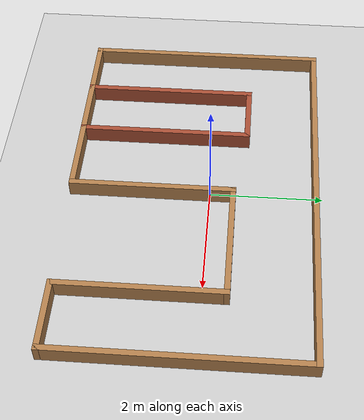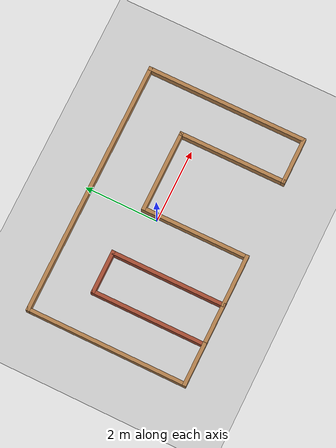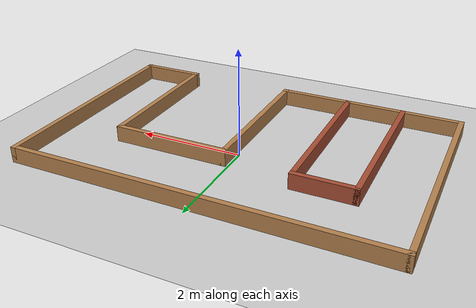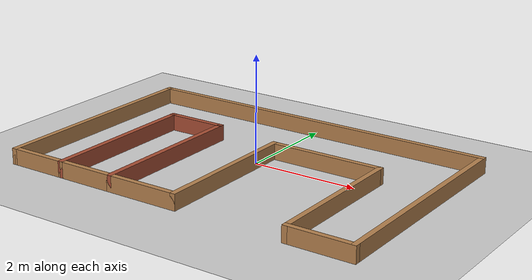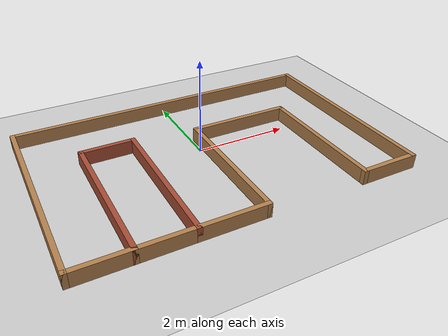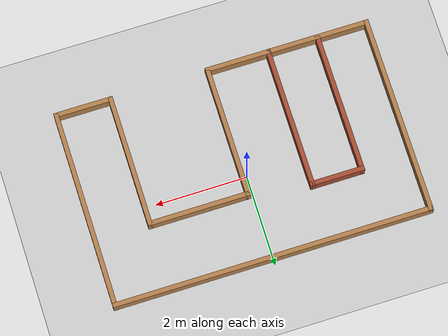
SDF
<sdf version='1.7'>
  <world name='default'>
    <!-- A global light source -->
    <include>
      <uri>model://sun</uri>
    </include>

    <!-- A ground plane -->
    <include>
      <uri>model://ground_plane</uri>
    </include>

    <physics type="ode">
      <real_time_update_rate>0.0</real_time_update_rate>
      <max_step_size>0.003</max_step_size>
      <ode>
        <solver>
          <type>quick</type>
          <iters>150</iters>
          <precon_iters>0</precon_iters>
          <sor>1.400000</sor>
          <use_dynamic_moi_rescaling>1</use_dynamic_moi_rescaling>
        </solver>
        <constraints>
          <cfm>0.00001</cfm>
          <erp>0.2</erp>
          <contact_max_correcting_vel>2000.000000</contact_max_correcting_vel>
          <contact_surface_layer>0.01000</contact_surface_layer>
        </constraints>
      </ode>
    </physics>

    <!-- Load model -->
    <model name='world'>
      <include>
        <uri>model://new_stage_cross01</uri>
        <pose>0 0.85 0 0 0 0</pose>
      </include>
    </model>

    <scene>
      <ambient>0.4 0.4 0.4 1</ambient>
      <background>0.7 0.7 0.7 1</background>
      <shadows>false</shadows>
    </scene>

    <gui fullscreen='0'>
      <camera name='user_camera'>
        <pose>-1.58359 -3.62535 12.9428 -0 1.3378 1.58423</pose>
        <view_controller>orbit</view_controller>
        <projection_type>perspective</projection_type>
      </camera>
    </gui>
  </world>
</sdf>

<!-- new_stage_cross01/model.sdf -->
<sdf version='1.7'>
  <model name='new_stage_cross01'>
    <pose>-0.892 -3.338 0 0 -0 0</pose>
    <link name='Wall_0'>
      <collision name='Wall_0_Collision'>
        <geometry>
          <box>
            <size>7 0.1 0.3</size>
          </box>
        </geometry>
        <pose>0 0 0.15 0 -0 0</pose>
      </collision>
      <visual name='Wall_0_Visual'>
        <pose>0 0 0.15 0 -0 0</pose>
        <geometry>
          <box>
            <size>7 0.1 0.3</size>
          </box>
        </geometry>
        <material>
          <script>
            <uri>file://media/materials/scripts/gazebo.material</uri>
            <name>Gazebo/Wood</name>
          </script>
          <ambient>1 0.764706 0.305882 1</ambient>
        </material>
        <meta>
          <layer>0</layer>
        </meta>
      </visual>
      <pose>-0 1.012 0 0 -0 0</pose>
    </link>
    <link name='Wall_2'>
      <collision name='Wall_2_Collision'>
        <geometry>
          <box>
            <size>4.4 0.1 0.3</size>
          </box>
        </geometry>
        <pose>0 0 0.15 0 -0 0</pose>
      </collision>
      <visual name='Wall_2_Visual'>
        <pose>0 0 0.15 0 -0 0</pose>
        <geometry>
          <box>
            <size>4.4 0.1 0.3</size>
          </box>
        </geometry>
        <material>
          <script>
            <uri>file://media/materials/scripts/gazebo.material</uri>
            <name>Gazebo/Wood</name>
          </script>
          <ambient>1 0.764706 0.305882 1</ambient>
        </material>
        <meta>
          <layer>0</layer>
        </meta>
      </visual>
      <pose>-3.45 -1.138 0 0 -0 -1.5708</pose>
    </link>
    <link name='Wall_27'>
      <collision name='Wall_27_Collision'>
        <geometry>
          <box>
            <size>4.4 0.1 0.3</size>
          </box>
        </geometry>
        <pose>0 0 0.15 0 -0 0</pose>
      </collision>
      <visual name='Wall_27_Visual'>
        <pose>0 0 0.15 0 -0 0</pose>
        <geometry>
          <box>
            <size>4.4 0.1 0.3</size>
          </box>
        </geometry>
        <material>
          <script>
            <uri>file://media/materials/scripts/gazebo.material</uri>
            <name>Gazebo/Wood</name>
          </script>
          <ambient>1 0.764706 0.305882 1</ambient>
        </material>
        <meta>
          <layer>0</layer>
        </meta>
      </visual>
      <pose>3.45 -1.138 0 0 -0 -1.5708</pose>
    </link>
    <link name='Wall_29'>
      <collision name='Wall_29_Collision'>
        <geometry>
          <box>
            <size>1.3 0.1 0.3</size>
          </box>
        </geometry>
        <pose>0 0 0.15 0 -0 0</pose>
      </collision>
      <visual name='Wall_29_Visual'>
        <pose>0 0 0.15 0 -0 0</pose>
        <geometry>
          <box>
            <size>1.3 0.1 0.3</size>
          </box>
        </geometry>
        <material>
          <script>
            <uri>file://media/materials/scripts/gazebo.material</uri>
            <name>Gazebo/Wood</name>
          </script>
          <ambient>1 0.764706 0.305882 1</ambient>
        </material>
        <meta>
          <layer>0</layer>
        </meta>
      </visual>
      <pose>2.85 -3.288 0 0 -0 3.14159</pose>
    </link>
    <link name='Wall_35'>
      <collision name='Wall_35_Collision'>
        <geometry>
          <box>
            <size>1.2 0.1 0.3</size>
          </box>
        </geometry>
        <pose>0 0 0.15 0 -0 0</pose>
      </collision>
      <visual name='Wall_35_Visual'>
        <pose>0 0 0.15 0 -0 0</pose>
        <geometry>
          <box>
            <size>1.2 0.1 0.3</size>
          </box>
        </geometry>
        <material>
          <script>
            <uri>file://media/materials/scripts/gazebo.material</uri>
            <name>Gazebo/Wood</name>
          </script>
          <ambient>1 0.764706 0.305882 1</ambient>
        </material>
        <meta>
          <layer>0</layer>
        </meta>
      </visual>
      <pose>-2.9 -3.288 0 0 -0 0</pose>
    </link>
    <link name='Wall_37'>
      <collision name='Wall_37_Collision'>
        <geometry>
          <box>
            <size>3.15 0.1 0.3</size>
          </box>
        </geometry>
        <pose>0 0 0.15 0 -0 0</pose>
      </collision>
      <visual name='Wall_37_Visual'>
        <pose>0 0 0.15 0 -0 0</pose>
        <geometry>
          <box>
            <size>3.15 0.1 0.3</size>
          </box>
        </geometry>
        <material>
          <script>
            <uri>file://media/materials/scripts/gazebo.material</uri>
            <name>Gazebo/Bricks</name>
          </script>
          <ambient>0.435294 0.796078 0.67451 1</ambient>
        </material>
        <meta>
          <layer>0</layer>
        </meta>
      </visual>
      <pose>-2.35 -1.763 0 0 -0 1.5708</pose>
    </link>
    <link name='Wall_39'>
      <collision name='Wall_39_Collision'>
        <geometry>
          <box>
            <size>1.2 0.1 0.3</size>
          </box>
        </geometry>
        <pose>0 0 0.15 0 -0 0</pose>
      </collision>
      <visual name='Wall_39_Visual'>
        <pose>0 0 0.15 0 -0 0</pose>
        <geometry>
          <box>
            <size>1.2 0.1 0.3</size>
          </box>
        </geometry>
        <material>
          <script>
            <uri>file://media/materials/scripts/gazebo.material</uri>
            <name>Gazebo/Bricks</name>
          </script>
          <ambient>0.435294 0.796078 0.67451 1</ambient>
        </material>
        <meta>
          <layer>0</layer>
        </meta>
      </visual>
      <pose>-1.8 -0.238 0 0 -0 0</pose>
    </link>
    <link name='Wall_42'>
      <collision name='Wall_42_Collision'>
        <geometry>
          <box>
            <size>3.15 0.1 0.3</size>
          </box>
        </geometry>
        <pose>0 0 0.15 0 -0 0</pose>
      </collision>
      <visual name='Wall_42_Visual'>
        <pose>0 0 0.15 0 -0 0</pose>
        <geometry>
          <box>
            <size>3.15 0.1 0.3</size>
          </box>
        </geometry>
        <material>
          <script>
            <uri>file://media/materials/scripts/gazebo.material</uri>
            <name>Gazebo/Bricks</name>
          </script>
          <ambient>0.435294 0.796078 0.67451 1</ambient>
        </material>
        <meta>
          <layer>0</layer>
        </meta>
      </visual>
      <pose>-1.25 -1.763 0 0 -0 -1.5708</pose>
    </link>
    <link name='Wall_47'>
      <collision name='Wall_47_Collision'>
        <geometry>
          <box>
            <size>1.45 0.1 0.3</size>
          </box>
        </geometry>
        <pose>0 0 0.15 0 -0 0</pose>
      </collision>
      <visual name='Wall_47_Visual'>
        <pose>0 0 0.15 0 -0 0</pose>
        <geometry>
          <box>
            <size>1.45 0.1 0.3</size>
          </box>
        </geometry>
        <material>
          <script>
            <uri>file://media/materials/scripts/gazebo.material</uri>
            <name>Gazebo/Wood</name>
          </script>
          <ambient>1 0.764706 0.305882 1</ambient>
        </material>
        <meta>
          <layer>0</layer>
        </meta>
      </visual>
      <pose>-0.575 -3.288 0 0 -0 0</pose>
    </link>
    <link name='Wall_53'>
      <collision name='Wall_53_Collision'>
        <geometry>
          <box>
            <size>2.95 0.1 0.3</size>
          </box>
        </geometry>
        <pose>0 0 0.15 0 -0 0</pose>
      </collision>
      <visual name='Wall_53_Visual'>
        <pose>0 0 0.15 0 -0 0</pose>
        <geometry>
          <box>
            <size>2.95 0.1 0.3</size>
          </box>
        </geometry>
        <material>
          <script>
            <uri>file://media/materials/scripts/gazebo.material</uri>
            <name>Gazebo/Wood</name>
          </script>
          <ambient>1 0.764706 0.305882 1</ambient>
        </material>
        <meta>
          <layer>0</layer>
        </meta>
      </visual>
      <pose>0.1 -1.863 0 0 -0 1.5708</pose>
    </link>
    <link name='Wall_55'>
      <collision name='Wall_55_Collision'>
        <geometry>
          <box>
            <size>2.95 0.1 0.3</size>
          </box>
        </geometry>
        <pose>0 0 0.15 0 -0 0</pose>
      </collision>
      <visual name='Wall_55_Visual'>
        <pose>0 0 0.15 0 -0 0</pose>
        <geometry>
          <box>
            <size>2.95 0.1 0.3</size>
          </box>
        </geometry>
        <material>
          <script>
            <uri>file://media/materials/scripts/gazebo.material</uri>
            <name>Gazebo/Wood</name>
          </script>
          <ambient>1 0.764706 0.305882 1</ambient>
        </material>
        <meta>
          <layer>0</layer>
        </meta>
      </visual>
      <pose>2.25 -1.863 0 0 -0 1.5708</pose>
    </link>
    <link name='Wall_57'>
      <collision name='Wall_57_Collision'>
        <geometry>
          <box>
            <size>2.25 0.1 0.3</size>
          </box>
        </geometry>
        <pose>0 0 0.15 0 -0 0</pose>
      </collision>
      <visual name='Wall_57_Visual'>
        <pose>0 0 0.15 0 -0 0</pose>
        <geometry>
          <box>
            <size>2.25 0.1 0.3</size>
          </box>
        </geometry>
        <material>
          <script>
            <uri>file://media/materials/scripts/gazebo.material</uri>
            <name>Gazebo/Wood</name>
          </script>
          <ambient>1 0.764706 0.305882 1</ambient>
        </material>
        <meta>
          <layer>0</layer>
        </meta>
      </visual>
      <pose>1.175 -0.438 0 0 -0 0</pose>
    </link>
    <link name='Wall_59'>
      <collision name='Wall_59_Collision'>
        <geometry>
          <box>
            <size>1.2 0.1 0.3</size>
          </box>
        </geometry>
        <pose>0 0 0.15 0 -0 0</pose>
      </collision>
      <visual name='Wall_59_Visual'>
        <pose>0 0 0.15 0 -0 0</pose>
        <geometry>
          <box>
            <size>1.2 0.1 0.3</size>
          </box>
        </geometry>
        <material>
          <script>
            <uri>file://media/materials/scripts/gazebo.material</uri>
            <name>Gazebo/Wood</name>
          </script>
          <ambient>1 0.764706 0.305882 1</ambient>
        </material>
        <meta>
          <layer>0</layer>
        </meta>
      </visual>
      <pose>-1.8 -3.288 0 0 -0 0</pose>
    </link>
    <static>1</static>
  </model>
</sdf>
